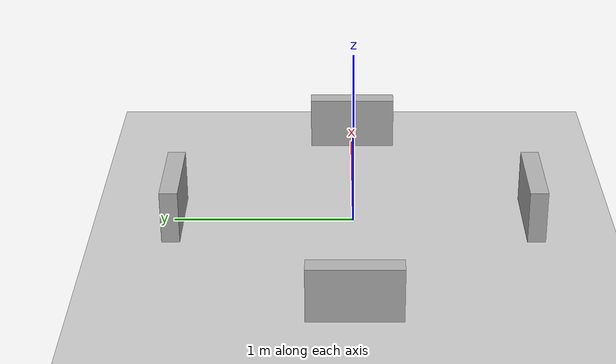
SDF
<?xml version="1.0"?>
<sdf version="1.8">
  <world name="maze_world">

    <physics name="1ms" type="ignored">
      <max_step_size>0.001</max_step_size>
      <real_time_factor>1.0</real_time_factor>
    </physics>

    <plugin filename="gz-sim-physics-system" name="gz::sim::systems::Physics"/>
    <plugin filename="gz-sim-user-commands-system" name="gz::sim::systems::UserCommands"/>
    <plugin filename="gz-sim-scene-broadcaster-system" name="gz::sim::systems::SceneBroadcaster"/>
    <plugin filename="gz-sim-sensors-system" name="gz::sim::systems::Sensors">
      <render_engine>ogre2</render_engine>
    </plugin>

    <light type="directional" name="sun">
      <cast_shadows>true</cast_shadows>
      <pose>0 0 10 0 0 0</pose>
      <diffuse>0.8 0.8 0.8 1</diffuse>
      <specular>0.2 0.2 0.2 1</specular>
      <direction>-0.5 0.1 -0.9</direction>
    </light>

    <!-- Ground Plane -->
    <include>
      <uri>https://fuel.gazebosim.org/1.0/OpenRobotics/models/Ground Plane</uri>
    </include>

    <!-- Test: Just 4 walls forming a small box -->
    <include>
      <uri>model://maze_wall</uri>
      <name>test_wall_1</name>
      <pose>0 1 0 0 0 0</pose>
    </include>

    <include>
      <uri>model://maze_wall</uri>
      <name>test_wall_2</name>
      <pose>0 -1 0 0 0 0</pose>
    </include>

    <include>
      <uri>model://maze_wall</uri>
      <name>test_wall_3</name>
      <pose>1 0 0 0 0 1.5708</pose>
    </include>

    <include>
      <uri>model://maze_wall</uri>
      <name>test_wall_4</name>
      <pose>-1 0 0 0 0 1.5708</pose>
    </include>

  </world>
</sdf>

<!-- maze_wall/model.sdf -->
<sdf version="1.8">
  <model name="maze_wall">
    <static>true</static>
    <link name="link">
      <pose>0 0 0.15 0 0 0</pose>
      <collision name="collision">
        <geometry>
          <box>
            <size>0.5 0.1 0.3</size>
          </box>
        </geometry>
      </collision>
      <visual name="visual">
        <geometry>
          <box>
            <size>0.5 0.1 0.3</size>
          </box>
        </geometry>
        <material>
          <ambient>0.5 0.5 0.5 1.0</ambient>
          <diffuse>0.7 0.7 0.7 1.0</diffuse>
          <specular>0.1 0.1 0.1 1.0</specular>
        </material>
      </visual>
    </link>
  </model>
</sdf>
